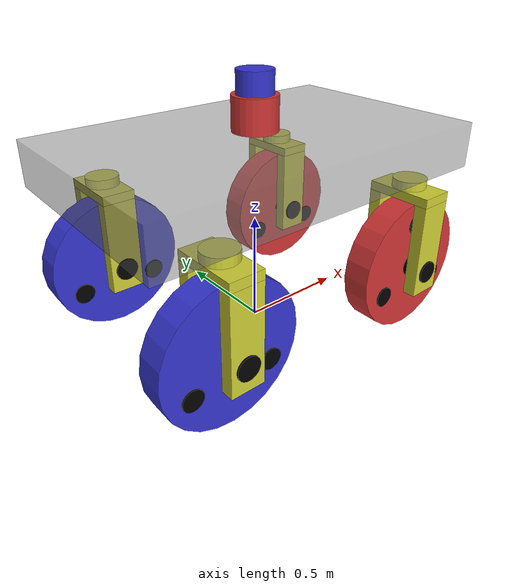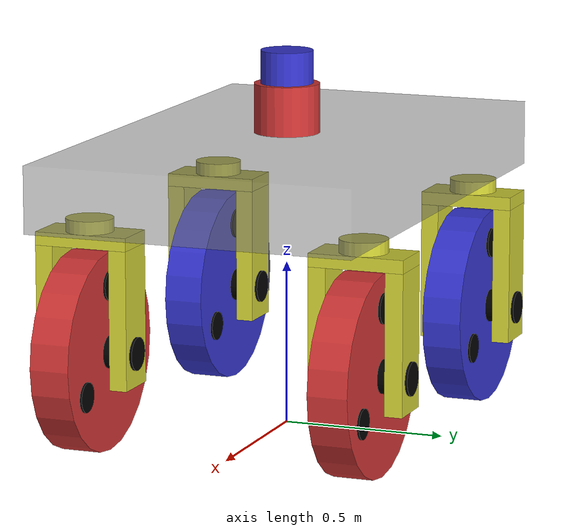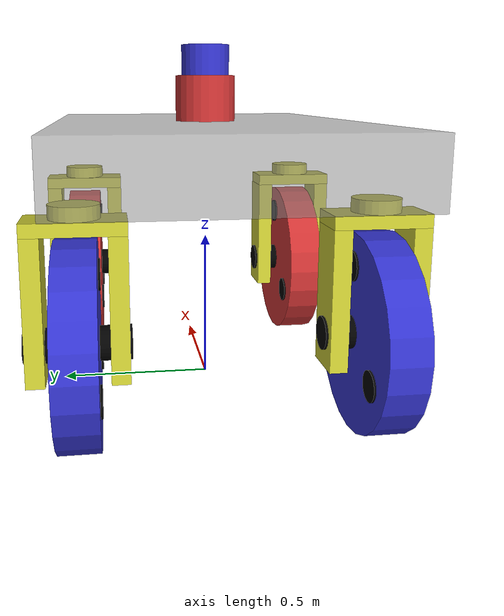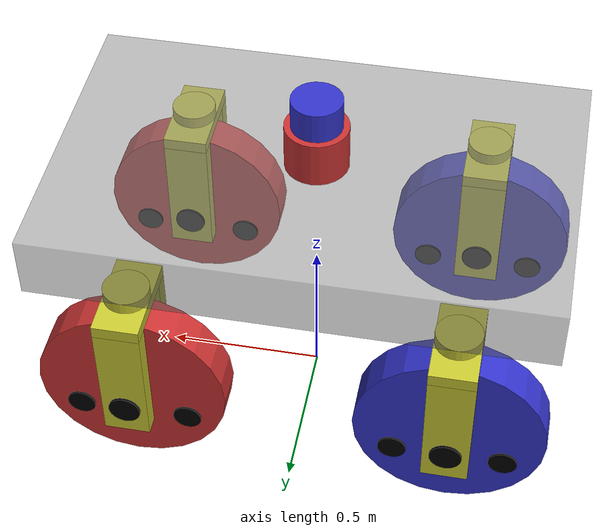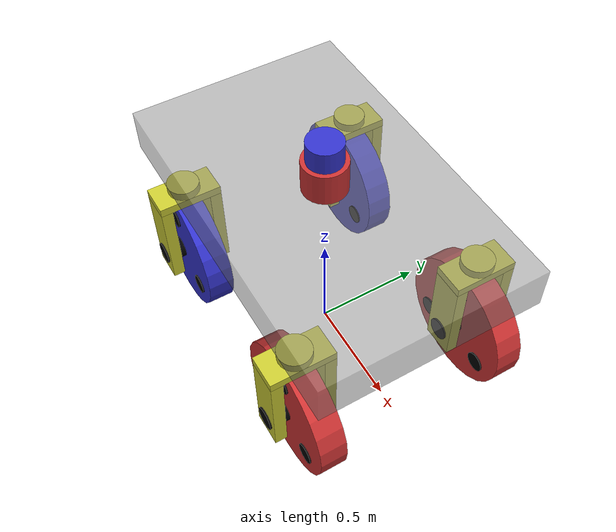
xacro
<?xml version="1.0"?>
<robot name="car_like_mobile_robot" xmlns:xacro="http://ros.org/wiki/xacro">
    <!-- 色を定義 -->
    <material name="gray">
        <color rgba="0.5 0.5 0.5 0.5"/>
    </material>
    <material name="red">
        <color rgba="0.8 0.2 0.2 1.0"/>
    </material>
    <material name="green">
        <color rgba="0.2 0.8 0.2 1.0"/>
    </material>
    <material name="blue">
        <color rgba="0.2 0.2 0.8 1.0"/>
    </material>
    <material name="yellow">
        <color rgba="0.8 0.8 0.2 1.0"/>
    </material>
    <material name="black">
        <color rgba="0.0 0.0 0.0 1.0"/>
    </material>

    <!-- 円周率 -->
    <xacro:property name="PI" value="3.1415926535897932384626433832795028841971" />

    <!-- 車両のパラメータ -->
    <xacro:property name="Lv" value="1.0" /> <!-- 車軸間距離 -->
    <xacro:property name="vehicle_body_length" value="${Lv * 1.6}" />
    <xacro:property name="vehicle_body_width" value="${Lv}" />
    <xacro:property name="vehicle_body_height" value="${Lv * 0.2}" />
    <xacro:property name="center_of_vehicle_body_z" value="${Lv * 0.8}" />
    <xacro:property name="wheel_base_half_length" value="${Lv * 0.5}" /> <!-- 車軸間半長 -->
    <!-- 車輪のパラメータ -->
    <xacro:property name="wheel_radius" value="${Lv * 0.3}" />  <!-- 車輪半径 -->
    <xacro:property name="wheel_width" value="${wheel_radius * 0.4}" />  <!-- 車輪幅 -->
    <!-- 車輪の回転がわかるようにするための棒のパラメータと、n番目の棒の車輪中心からの相対位置(x,y) -->
    <xacro:property name="wheel_visual_cylinder_radius" value="${wheel_radius * 0.15}" />
    <xacro:property name="wheel_visual_cylinder_length" value="${wheel_width * 1.1}" />
    <xacro:property name="wheel_1st_visual_cylinder_x" value="${(wheel_radius * 2.0 / 3.0) * cos(PI / 6.0)}" />
    <xacro:property name="wheel_1st_visual_cylinder_y" value="${(wheel_radius * 2.0 / 3.0) * sin(PI / 6.0)}" />
    <xacro:property name="wheel_2nd_visual_cylinder_x" value="${(wheel_radius * 2.0 / 3.0) * cos(5.0 * PI / 6.0)}" />
    <xacro:property name="wheel_2nd_visual_cylinder_y" value="${(wheel_radius * 2.0 / 3.0) * sin(5.0 * PI / 6.0)}" />
    <xacro:property name="wheel_3rd_visual_cylinder_x" value="${(wheel_radius * 2.0 / 3.0) * cos(9.0 * PI / 6.0)}" />
    <xacro:property name="wheel_3rd_visual_cylinder_y" value="${(wheel_radius * 2.0 / 3.0) * sin(9.0 * PI / 6.0)}" />
    <!-- steeringのパラメータ -->
    <xacro:property name="steering_radius" value="${wheel_width * 0.6}" />
    <xacro:property name="steering_height" value="${Lv * 0.04}" />
    <xacro:property name="left_steering_y" value="${0.5*vehicle_body_width - steering_radius}" />
    <xacro:property name="right_steering_y" value="${-0.5*vehicle_body_width + steering_radius}" />
    <!-- steeringの下についている板とその仲間たちのパラメータ -->
    <xacro:property name="plate_under_the_steering_length" value="${steering_radius*2.0}" />
    <xacro:property name="plate_under_the_steering_width" value="${steering_radius*4.0}" />
    <xacro:property name="plate_under_the_steering_height" value="${Lv * 0.04}" />
    <xacro:property name="side_plate_of_wheel_length" value="${plate_under_the_steering_length}" />
    <xacro:property name="side_plate_of_wheel_width" value="${0.25*(plate_under_the_steering_width-steering_radius)}" />
    <xacro:property name="side_plate_of_wheel_height" value="${center_of_vehicle_body_z-(0.5*vehicle_body_height+steering_height+plate_under_the_steering_height) - (wheel_radius-axel_radius*2.0)}" />
    <xacro:property name="axel_length" value="${plate_under_the_steering_width*1.05}" /> <!-- 車軸長 -->
    <xacro:property name="axel_radius" value="0.05" /> <!-- 車軸半径 -->
    <!-- LiDARセンサのパラメータ -->
    <xacro:property name="lidar_radius" value="0.1" />
    <xacro:property name="lidar_height" value="0.15" />
    <xacro:property name="lidar_z" value="${center_of_vehicle_body_z + (0.5 * (vehicle_body_height + lidar_height))}" />
    <!-- IMUセンサのパラメータ -->
    <xacro:property name="imu_radius" value="0.08" />
    <xacro:property name="imu_height" value="0.1" />
    <!-- 車体の中に埋め込む -->
    <!-- LiDARセンサの上に乗せる -->
    <xacro:property name="imu_z" value="${lidar_z + 0.5 * (lidar_height + imu_height)}" />
    <!-- 後輪間中点の上に乗せる -->
    <!-- bodyの下に搭載する -->

    <!-- リンクの質量設定 -->
    <xacro:property name="body_mass" value="50.0" />
    <xacro:property name="steering_mass" value="2.0" />
    <xacro:property name="plate_under_the_steering_mass" value="2.0" />
    <xacro:property name="side_plate_of_wheel_mass" value="8.0" />
    <!-- 半径:0.05[m], 幅:0.288[m], 鋼の密度:7850[kg/m^3] -->
    <xacro:property name="axel_mass" value="17.75" />
    <!-- 外径:0.3[m], 幅:0.12[m], 内径:0.21[m], ゴムの密度:1500[kg/m^3] -->
    <xacro:property name="wheel_mass" value="5.19" />
    <xacro:property name="wheel_visual_cylinder_mass" value="0.0" />

    <!-- リンクのイナーシャの設定 -->
    <xacro:property name="I_body_xx" value="${body_mass*(vehicle_body_height*vehicle_body_height + vehicle_body_length*vehicle_body_length) / 12}" />
    <xacro:property name="I_body_yy" value="${body_mass*(vehicle_body_width*vehicle_body_width + vehicle_body_height*vehicle_body_height) / 12}" />
    <xacro:property name="I_body_zz" value="${body_mass*(vehicle_body_width*vehicle_body_width + vehicle_body_length*vehicle_body_length) / 12}" />
    <xacro:property name="I_steering_xx" value="${steering_mass*(3*axel_radius*axel_radius + steering_height*steering_height) / 12}" />
    <xacro:property name="I_steering_yy" value="${steering_mass*(3*axel_radius*axel_radius + steering_height*steering_height) / 12}" />
    <xacro:property name="I_steering_zz" value="${steering_mass*axel_radius*axel_radius / 2}" />
    <xacro:property name="I_plate_under_the_steering_xx" value="${plate_under_the_steering_mass*(plate_under_the_steering_height*plate_under_the_steering_height + plate_under_the_steering_length*plate_under_the_steering_length) / 12}" />
    <xacro:property name="I_plate_under_the_steering_yy" value="${plate_under_the_steering_mass*(plate_under_the_steering_width*plate_under_the_steering_width + plate_under_the_steering_height*plate_under_the_steering_height) / 12}" />
    <xacro:property name="I_plate_under_the_steering_zz" value="${plate_under_the_steering_mass*(plate_under_the_steering_width*plate_under_the_steering_width + plate_under_the_steering_length*plate_under_the_steering_length) / 12}" />
    <xacro:property name="I_side_plate_of_wheel_xx" value="${side_plate_of_wheel_mass*(side_plate_of_wheel_height*side_plate_of_wheel_height + side_plate_of_wheel_length*side_plate_of_wheel_length) / 12}" />
    <xacro:property name="I_side_plate_of_wheel_yy" value="${side_plate_of_wheel_mass*(side_plate_of_wheel_width*side_plate_of_wheel_width + side_plate_of_wheel_height*side_plate_of_wheel_height) / 12}" />
    <xacro:property name="I_side_plate_of_wheel_zz" value="${side_plate_of_wheel_mass*(side_plate_of_wheel_width*side_plate_of_wheel_width + side_plate_of_wheel_length*side_plate_of_wheel_length) / 12}" />
    <xacro:property name="I_axel_xx" value="${axel_mass*(3*axel_radius*axel_radius + axel_length*axel_length) / 12}" />
    <xacro:property name="I_axel_yy" value="${axel_mass*(3*axel_radius*axel_radius + axel_length*axel_length) / 12}" />
    <xacro:property name="I_axel_zz" value="${axel_mass*axel_radius*axel_radius / 2}" />
    <xacro:property name="I_wheel_xx" value="${wheel_mass*(3*wheel_radius*wheel_radius + wheel_width*wheel_width) / 12}" />
    <xacro:property name="I_wheel_yy" value="${wheel_mass*(3*wheel_radius*wheel_radius + wheel_width*wheel_width) / 12}" />
    <xacro:property name="I_wheel_zz" value="${wheel_mass*wheel_radius*wheel_radius / 2}" />
    <xacro:property name="I_wheel_visual_cylinder_xx" value="${wheel_visual_cylinder_mass*(3*wheel_visual_cylinder_radius*wheel_visual_cylinder_radius + wheel_visual_cylinder_length*wheel_visual_cylinder_length) / 12}" />
    <xacro:property name="I_wheel_visual_cylinder_yy" value="${wheel_visual_cylinder_mass*(3*wheel_visual_cylinder_radius*wheel_visual_cylinder_radius + wheel_visual_cylinder_length*wheel_visual_cylinder_length) / 12}" />
    <xacro:property name="I_wheel_visual_cylinder_zz" value="${wheel_visual_cylinder_mass*wheel_visual_cylinder_radius*wheel_visual_cylinder_radius / 2}" />

    <!-- 摩擦力 -->
    <xacro:property name="mu_1" value="0.8" />
    <xacro:property name="mu_2" value="0.8" />
    <xacro:property name="kp" value="2000000" />
    <xacro:property name="kd" value="100" />

    <!-- 車輪の回転がわかるように埋め込む黒棒のマクロ -->
    <xacro:macro name="wheel_visual_cylinder_macro" params="vehicle front_or_rear left_or_right nth_cylinder">
        <joint name="${vehicle}_${front_or_rear}_${left_or_right}_${nth_cylinder}_joint" type="fixed">
            <xacro:if value="${nth_cylinder=='first'}">
                <origin xyz="${wheel_1st_visual_cylinder_x} ${wheel_1st_visual_cylinder_y} 0" rpy="0 0 0"/>
            </xacro:if>
            <xacro:if value="${nth_cylinder=='second'}">
                <origin xyz="${wheel_2nd_visual_cylinder_x} ${wheel_2nd_visual_cylinder_y} 0" rpy="0 0 0"/>
            </xacro:if>
            <xacro:if value="${nth_cylinder=='third'}">
                <origin xyz="${wheel_3rd_visual_cylinder_x} ${wheel_3rd_visual_cylinder_y} 0" rpy="0 0 0"/>
            </xacro:if>
            <parent link="${vehicle}_${front_or_rear}_${left_or_right}_link"/>
            <child  link="${vehicle}_${front_or_rear}_${left_or_right}_${nth_cylinder}_link"/>
        </joint>
        <link name="${vehicle}_${front_or_rear}_${left_or_right}_${nth_cylinder}_link">
            <inertial>
                <origin xyz="0 0 0" rpy="0 0 0"/>
                <mass value="${wheel_visual_cylinder_mass}"/>
                <inertia ixx="${I_wheel_visual_cylinder_xx}" ixy="0.0" ixz="0.0" iyy="${I_wheel_visual_cylinder_yy}" iyz="0.0" izz="${I_wheel_visual_cylinder_zz}"/>
            </inertial>
            <visual>
                <geometry>
                    <cylinder radius="${wheel_visual_cylinder_radius}" length="${wheel_visual_cylinder_length}" />
                </geometry>
                <material name="black"/>
            </visual>
            <collision>
                <geometry>
                    <cylinder radius="${wheel_visual_cylinder_radius}" length="${wheel_visual_cylinder_length}" />
                </geometry>
            </collision>
        </link>
        <gazebo reference="${vehicle}_${front_or_rear}_${left_or_right}_${nth_cylinder}_link">
            <material>Gazebo/Black</material>
        </gazebo>
    </xacro:macro>

    <!-- wheel macro -->
    <xacro:macro name="wheel_macro" params="parent vehicle front_or_rear left_or_right color gazebo_color">
        <joint name="${vehicle}_${front_or_rear}_${left_or_right}_joint" type="continuous">
            <origin xyz="0 0 ${-(center_of_vehicle_body_z - 0.5*(vehicle_body_height +steering_height) - wheel_radius)}" rpy="${radians(-90)} 0 0"/>
            <parent link="${parent}"/>
            <child  link="${vehicle}_${front_or_rear}_${left_or_right}_link"/>
            <axis xyz="0 0 1" />
            <limit velocity="10.0" effort="51.0" />
        </joint>
        <link name="${vehicle}_${front_or_rear}_${left_or_right}_link">
            <inertial>
                <origin xyz="0 0 0" rpy="0 0 0"/>
                <mass value="${wheel_mass}"/>
                <inertia ixx="${I_wheel_xx}" ixy="0.0" ixz="0.0" iyy="${I_wheel_yy}" iyz="0.0" izz="${I_wheel_zz}"/>
            </inertial>
            <visual>
                <geometry>
                    <cylinder radius="${wheel_radius}" length="${wheel_width}" />
                </geometry>
                <material name="${color}"/>
            </visual>
            <collision>
                <geometry>
                    <cylinder radius="${wheel_radius}" length="${wheel_width}" />
                </geometry>
            </collision>
        </link>
        <!-- 回転がわかるように3つの黒棒を埋め込む -->
        <xacro:wheel_visual_cylinder_macro vehicle="${vehicle}" front_or_rear="${front_or_rear}" left_or_right ="${left_or_right}" nth_cylinder="first"/>
        <xacro:wheel_visual_cylinder_macro vehicle="${vehicle}" front_or_rear="${front_or_rear}" left_or_right ="${left_or_right}" nth_cylinder="second"/>
        <xacro:wheel_visual_cylinder_macro vehicle="${vehicle}" front_or_rear="${front_or_rear}" left_or_right ="${left_or_right}" nth_cylinder="third"/>

        <gazebo reference="${vehicle}_${front_or_rear}_${left_or_right}_link">
            <material>Gazebo/${gazebo_color}</material>
            <mu1 value="${mu_1}" />
            <mu2 value="${mu_2}" />
            <kp value="${kp}" />
            <kd value="${kd}" />
        </gazebo>
    </xacro:macro>

    <!-- side_plate_of_wheel_macro -->
    <xacro:macro name="side_plate_of_wheel_macro" params="parent front_or_rear left_or_right left_plate_or_right_plate">
        <joint name="vehicle1_${left_plate_or_right_plate}_plate_of_${front_or_rear}_${left_or_right}_wheel_joint" type="fixed">
            <xacro:if value="${left_plate_or_right_plate=='left'}">
                <origin xyz="0 ${0.5*(plate_under_the_steering_width - side_plate_of_wheel_width)} ${-0.5 *(plate_under_the_steering_height + side_plate_of_wheel_height)}" rpy="0 0 0"/>
            </xacro:if>
            <xacro:if value="${left_plate_or_right_plate=='right'}">
                <origin xyz="0 ${-0.5*(plate_under_the_steering_width - side_plate_of_wheel_width)} ${-0.5 *(plate_under_the_steering_height + side_plate_of_wheel_height)}" rpy="0 0 0"/>
            </xacro:if>
            <parent link="${parent}"/>
            <child  link="vehicle1_${left_plate_or_right_plate}_plate_of_${front_or_rear}_${left_or_right}_wheel_link"/>
        </joint>
        <link name="vehicle1_${left_plate_or_right_plate}_plate_of_${front_or_rear}_${left_or_right}_wheel_link">
            <inertial>
                <origin xyz="0 0 0" rpy="0 0 0"/>
                <mass value="${side_plate_of_wheel_mass}"/>
                <inertia ixx="${I_side_plate_of_wheel_xx}" ixy="0.0" ixz="0.0" iyy="${I_side_plate_of_wheel_yy}" iyz="0.0" izz="${I_side_plate_of_wheel_zz}"/>
            </inertial>
            <visual>
            <origin xyz="0 0 0" rpy="0 0 0" />
                <geometry>
                    <box size="${side_plate_of_wheel_length} ${side_plate_of_wheel_width} ${side_plate_of_wheel_height}" />
                </geometry>
                <material name="yellow" />
            </visual>
            <collision>
            <origin xyz="0 0 0" rpy="0 0 0" />
                <geometry>
                    <box size="${side_plate_of_wheel_length} ${side_plate_of_wheel_width} ${side_plate_of_wheel_height}" />
                </geometry>
            </collision>
        </link>
        <gazebo reference="vehicle1_${left_plate_or_right_plate}_plate_of_${front_or_rear}_${left_or_right}_wheel_link">
            <material>Gazebo/Yellow</material>
        </gazebo>
    </xacro:macro>

    <!-- ${front_or_rear}_${left_or_right}_steering_and_wheel_macro -->
    <xacro:macro name="steering_and_wheel_macro" params="parent xyz front_or_rear left_or_right">
        <!-- steering -->
        <xacro:if value="${front_or_rear=='front'}">
            <xacro:property name="wheel_joint_type" value="revolute" />
        </xacro:if>
        <xacro:if value="${front_or_rear=='rear'}">
            <xacro:property name="wheel_joint_type" value="fixed" />
        </xacro:if>
        <joint name="vehicle1_${front_or_rear}_${left_or_right}_steering_joint" type="${wheel_joint_type}">
            <origin xyz="${xyz}" rpy="0 0 0"/>
            <parent link="${parent}"/>
            <child  link="vehicle1_${front_or_rear}_${left_or_right}_steering_link"/>
            <xacro:if value="${front_or_rear=='front'}">
                <axis xyz="0 0 1" />
                <limit lower="-1.57" upper="1.57" effort="1000.0" velocity="10.0"/>
            </xacro:if>
        </joint>
        <link name="vehicle1_${front_or_rear}_${left_or_right}_steering_link">
            <inertial>
                <origin xyz="0 0 0" rpy="0 0 0"/>
                <mass value="${steering_mass}"/>
                <inertia ixx="${I_steering_xx}" ixy="0.0" ixz="0.0" iyy="${I_steering_yy}" iyz="0.0" izz="${I_steering_zz}"/>
            </inertial>
            <visual>
            <origin xyz="0 0 0" rpy="0 0 0" />
                <geometry>
                    <cylinder radius="${steering_radius}" length="${steering_height}" />
                </geometry>
                <material name="yellow" />
            </visual>
            <collision>
            <origin xyz="0 0 0" rpy="0 0 0" />
                <geometry>
                    <cylinder radius="${steering_radius}" length="${steering_height}" />
                </geometry>
            </collision>
        </link>
        <gazebo reference="vehicle1_${front_or_rear}_${left_or_right}_steering_link">
            <material>Gazebo/Yellow</material>
        </gazebo>

        <!-- wheel -->
        <xacro:if value="${front_or_rear=='front'}">
            <xacro:wheel_macro vehicle="vehicle1" front_or_rear="${front_or_rear}" left_or_right ="${left_or_right}" parent="vehicle1_${front_or_rear}_${left_or_right}_steering_link" color="red" gazebo_color="Red"/>
        </xacro:if>
        <xacro:if value="${front_or_rear=='rear'}">
            <xacro:wheel_macro vehicle="vehicle1" front_or_rear="${front_or_rear}" left_or_right ="${left_or_right}" parent="vehicle1_${front_or_rear}_${left_or_right}_steering_link" color="blue" gazebo_color="Blue"/>
        </xacro:if>

        <!-- plate under the steering -->
        <joint name="vehicle1_plate_under_the_${front_or_rear}_${left_or_right}_steering_joint" type="fixed">
            <origin xyz="0 0 ${-0.5 *(steering_height + plate_under_the_steering_height)}" rpy="0 0 0"/>
            <parent link="vehicle1_${front_or_rear}_${left_or_right}_steering_link"/>
            <child  link="vehicle1_plate_under_the_${front_or_rear}_${left_or_right}_steering_link"/>
        </joint>
        <link name="vehicle1_plate_under_the_${front_or_rear}_${left_or_right}_steering_link">
            <inertial>
                <origin xyz="0 0 0" rpy="0 0 0"/>
                <mass value="${plate_under_the_steering_mass}"/>
                <inertia ixx="${I_plate_under_the_steering_xx}" ixy="0.0" ixz="0.0" iyy="${I_plate_under_the_steering_yy}" iyz="0.0" izz="${I_plate_under_the_steering_zz}"/>
            </inertial>
            <visual>
            <origin xyz="0 0 0" rpy="0 0 0" />
                <geometry>
                    <box size="${plate_under_the_steering_length} ${plate_under_the_steering_width} ${plate_under_the_steering_height}" />
                </geometry>
                <material name="yellow" />
            </visual>
            <collision>
            <origin xyz="0 0 0" rpy="0 0 0" />
                <geometry>
                    <box size="${plate_under_the_steering_length} ${plate_under_the_steering_width} ${plate_under_the_steering_height}" />
                </geometry>
            </collision>
        </link>
        <gazebo reference="vehicle1_plate_under_the_${front_or_rear}_${left_or_right}_steering_link">
            <material>Gazebo/Yellow</material>
        </gazebo>

        <!-- side plate of wheel -->
        <xacro:side_plate_of_wheel_macro parent="vehicle1_plate_under_the_${front_or_rear}_${left_or_right}_steering_link" front_or_rear="${front_or_rear}" left_or_right="${left_or_right}" left_plate_or_right_plate="left"/>
        <xacro:side_plate_of_wheel_macro parent="vehicle1_plate_under_the_${front_or_rear}_${left_or_right}_steering_link" front_or_rear="${front_or_rear}" left_or_right="${left_or_right}" left_plate_or_right_plate="right"/>

        <!-- axel of wheel -->
        <joint name="vehicle1_${front_or_rear}_${left_or_right}_wheel_axle_joint" type="fixed">
            <origin xyz="0 0 ${-((center_of_vehicle_body_z - 0.5*vehicle_body_height -steering_height -0.5*plate_under_the_steering_height) - wheel_radius)}" rpy="${radians(-90)} 0 0"/>
            <parent link="vehicle1_plate_under_the_${front_or_rear}_${left_or_right}_steering_link"/>
            <child  link="vehicle1_${front_or_rear}_${left_or_right}_wheel_axle_link"/>
        </joint>
        <link name="vehicle1_${front_or_rear}_${left_or_right}_wheel_axle_link">
            <inertial>
                <origin xyz="0 0 0" rpy="0 0 0"/>
                <mass value="${axel_mass}"/>
                <inertia ixx="${I_axel_xx}" ixy="0.0" ixz="0.0" iyy="${I_axel_yy}" iyz="0.0" izz="${I_axel_zz}"/>
            </inertial>
            <visual>
            <origin xyz="0 0 0" rpy="0 0 0" />
                <geometry>
                    <cylinder radius="${axel_radius}" length="${axel_length}" />
                </geometry>
                <material name="black" />
            </visual>
            <collision>
            <origin xyz="0 0 0" rpy="0 0 0" />
                <geometry>
                    <cylinder radius="${axel_radius}" length="${axel_length}" />
                </geometry>
            </collision>
        </link>
        <gazebo reference="vehicle1_${front_or_rear}_${left_or_right}_wheel_axle_link">
            <material>Gazebo/Black</material>
        </gazebo>

    </xacro:macro>

    <!-- LiDARセンサのマクロ -->
    <xacro:macro name="laser_macro" params="parent prefix xyz">
        <joint name="${prefix}_joint" type="fixed">
            <parent link="${parent}"/>
            <child  link="${prefix}_link"/>
            <origin xyz="${xyz}" rpy="0 0 0"/>
        </joint>
        <link name="${prefix}_link">
            <inertial>
                <mass value="1e-5" />
                <origin xyz="0 0 0" rpy="0 0 0" />
                <inertia ixx="1e-6" ixy="0" ixz="0" iyy="1e-6" iyz="0" izz="1e-6" />
            </inertial>
            <visual>
                <origin xyz="0 0 0" rpy="0 0 0" />
                <geometry>
                    <cylinder radius="${lidar_radius}" length="${lidar_height}" />
                </geometry>
                <material name="red" />
            </visual>
            <collision>
                <origin xyz="0 0 0" rpy="0 0 0"/>
                <geometry>
                    <cylinder radius="${lidar_radius}" length="${lidar_height}" />
                </geometry>
            </collision>
        </link>
        <gazebo reference="${prefix}_link">
            <material>Gazebo/Red</material>
            <sensor type="gpu_ray" name="${prefix}">
                <pose>0 0 0 0 0 0</pose>
                <visualize>true</visualize>
                <update_rate>30</update_rate>
                <ray>
                    <scan>
                        <horizontal>
                            <samples>720</samples>
                            <resolution>1</resolution>
                            <min_angle>${-PI / 2}</min_angle>
                            <max_angle>${PI / 2}</max_angle>
                        </horizontal>
                    </scan>
                    <range>
                        <min>0.10</min>
                        <max>30.0</max>
                        <resolution>0.01</resolution>
                    </range>
                    <noise>
                        <type>gaussian</type>
                        <mean>0.0</mean>
                        <stddev>0.001</stddev>
                    </noise>
                </ray>
                <plugin name="gazebo_ros_lidar_controller" filename="libgazebo_ros_gpu_laser.so">
                    <topicName>/${prefix}_link/scan</topicName>
                    <frameName>${prefix}_link</frameName>
                </plugin>
            </sensor>
        </gazebo>
    </xacro:macro>

    <!-- IMUセンサを取り付けるマクロ -->
    <xacro:macro name="imu_macro" params="parent prefix xyz">
        <!-- IMUセンサを取り付けるジョイント -->
        <joint name="${prefix}_joint" type="fixed">
            <parent link="${parent}"/>
            <child link="${prefix}_link"/>
            <origin xyz="${xyz}" rpy="0 0 0"/>
        </joint>
        <!-- IMUセンサのリンク -->
        <link name="${prefix}_link">
            <visual>
                <geometry>
                    <cylinder radius="${imu_radius}" length="${imu_height}" />
                </geometry>
                <material name="blue"/>
            </visual>
            <collision>
                <geometry>
                    <cylinder radius="${imu_radius}" length="${imu_height}" />
                </geometry>
            </collision>
            <inertial>
                <mass value="0.01"/>
                <inertia ixx="0.0001" ixy="0.0" ixz="0.0" iyy="0.0001" iyz="0.0" izz="0.0001"/>
            </inertial>
        </link>
        <!-- Gazeboプラグインの追加 -->
        <gazebo reference="${prefix}_link">
            <gravity>true</gravity>
            <material>Gazebo/Blue</material>
            <sensor name="imu_sensor" type="imu">
                <always_on>true</always_on>
                <update_rate>1000</update_rate>
                <visualize>true</visualize>
                <topic>__default_topic__</topic>
                <plugin name="imu_plugin" filename="libgazebo_ros_imu_sensor.so">
                    <topicName>/${prefix}_link/imu</topicName>
                    <bodyName>${prefix}_link</bodyName>
                    <updateRateHZ>10.0</updateRateHZ>
                    <gaussianNoise>0.01</gaussianNoise>
                    <xyzOffset>0 0 0</xyzOffset>
                    <rpyOffset>0 0 0</rpyOffset>
                    <frameName>${prefix}_link</frameName>
                </plugin>
                <pose>0 0 0 0 0 0</pose>
            </sensor>
        </gazebo>
    </xacro:macro>

    <!-- 本体 -->
    <link name="base_link"/>

    <!-- 胴体 -->
    <joint name="vehicle1_body_joint" type="fixed">
        <parent link="base_link"/>
        <child  link="vehicle1_body_link"/>
        <!-- 車体中心を基準位置 -->
        <origin xyz="0 0 ${center_of_vehicle_body_z}" rpy="0 0 0"/>
        <!-- 後輪中点を基準位置 -->
    </joint>
    <link name="vehicle1_body_link">
        <inertial>
            <origin xyz="0 0 0" rpy="0 0 0"/>
            <mass value="${body_mass}"/>
            <inertia ixx="${I_body_xx}" ixy="0.0" ixz="0.0" iyy="${I_body_yy}" iyz="0.0" izz="${I_body_zz}"/>
        </inertial>
        <visual>
            <origin xyz="0 0 0" rpy="0 0 0" />
            <geometry>
                <box size="${vehicle_body_length} ${vehicle_body_width} ${vehicle_body_height}" />
            </geometry>
            <material name="gray" />
        </visual>
        <collision>
            <origin xyz="0 0 0" rpy="0 0 0" />
            <geometry>
                <box size="${vehicle_body_length} ${vehicle_body_width} ${vehicle_body_height}" />
            </geometry>
        </collision>
    </link>
    <gazebo reference="vehicle1_body_link">
        <material>Gazebo/Gray</material>
    </gazebo>

    <!-- LiDAR sensor -->
    <xacro:laser_macro prefix="lidar" parent="vehicle1_body_link" xyz="0 0 ${lidar_z - center_of_vehicle_body_z}"/>

    <!-- IMU sensor -->
    <xacro:imu_macro prefix="imu" parent="vehicle1_body_link" xyz="0 0 ${imu_z - center_of_vehicle_body_z}"/>

    <!-- steering and wheel -->
    <xacro:steering_and_wheel_macro parent="vehicle1_body_link" xyz="${wheel_base_half_length} ${left_steering_y} ${-0.5 *(vehicle_body_height + steering_height)}" front_or_rear="front" left_or_right="left"/>
    <xacro:steering_and_wheel_macro parent="vehicle1_body_link" xyz="${wheel_base_half_length} ${right_steering_y} ${-0.5 *(vehicle_body_height + steering_height)}" front_or_rear="front" left_or_right="right"/>
    <xacro:steering_and_wheel_macro parent="vehicle1_body_link" xyz="${-wheel_base_half_length} ${left_steering_y} ${-0.5 *(vehicle_body_height + steering_height)}" front_or_rear="rear" left_or_right="left"/>
    <xacro:steering_and_wheel_macro parent="vehicle1_body_link" xyz="${-wheel_base_half_length} ${right_steering_y} ${-0.5 *(vehicle_body_height + steering_height)}" front_or_rear="rear" left_or_right="right"/>

    <!-- Transmission -->
    <!-- front left wheel(受動車輪のためEffort入力Effort出力) -->
    <transmission name="vehicle1_front_left_trans" type="SimpleTransmission">
        <type>transmission_interface/SimpleTransmission</type>
        <joint name="vehicle1_front_left_joint">
            <hardwareInterface>hardware_interface/EffortJointInterface</hardwareInterface>
        </joint>
        <actuator name="vehicle1_front_left_motor">
            <mechanicalReduction>1</mechanicalReduction>
        </actuator>
    </transmission>
    <!-- front left steering(Position入力Effort出力) -->
    <transmission name="vehicle1_front_left_steering_trans" type="SimpleTransmission">
        <type>transmission_interface/SimpleTransmission</type>
        <joint name="vehicle1_front_left_steering_joint">
            <hardwareInterface>hardware_interface/EffortJointInterface</hardwareInterface>
        </joint>
        <actuator name="vehicle1_front_left_steering_motor">
            <mechanicalReduction>1</mechanicalReduction>
        </actuator>
    </transmission>
    <!-- front right wheel(受動車輪のためEffort入力Effort出力) -->
    <transmission name="vehicle1_front_right_trans" type="SimpleTransmission">
        <type>transmission_interface/SimpleTransmission</type>
        <joint name="vehicle1_front_right_joint">
            <hardwareInterface>hardware_interface/EffortJointInterface</hardwareInterface>
        </joint>
        <actuator name="vehicle1_front_right_motor">
            <mechanicalReduction>1</mechanicalReduction>
        </actuator>
    </transmission>
    <!-- front right steering(Position入力Effort出力) -->
    <transmission name="vehicle1_front_right_steering_trans" type="SimpleTransmission">
        <type>transmission_interface/SimpleTransmission</type>
        <joint name="vehicle1_front_right_steering_joint">
            <hardwareInterface>hardware_interface/EffortJointInterface</hardwareInterface>
        </joint>
        <actuator name="vehicle1_front_right_steering_motor">
            <mechanicalReduction>1</mechanicalReduction>
        </actuator>
    </transmission>
    <!-- rear left wheel(差動二輪のためVelocity入力Effort出力) -->
    <transmission name="vehicle1_rear_left_trans" type="SimpleTransmission">
        <type>transmission_interface/SimpleTransmission</type>
        <joint name="vehicle1_rear_left_joint">
            <hardwareInterface>hardware_interface/EffortJointInterface</hardwareInterface>
        </joint>
        <actuator name="vehicle1_rear_left_motor">
            <mechanicalReduction>1</mechanicalReduction>
        </actuator>
    </transmission>
    <!-- rear right wheel(差動二輪のためVelocity入力Effort出力) -->
    <transmission name="vehicle1_rear_right_trans" type="SimpleTransmission">
        <type>transmission_interface/SimpleTransmission</type>
        <joint name="vehicle1_rear_right_joint">
            <hardwareInterface>hardware_interface/EffortJointInterface</hardwareInterface>
        </joint>
        <actuator name="vehicle1_rear_right_motor">
            <mechanicalReduction>1</mechanicalReduction>
        </actuator>
    </transmission>

    <!-- Gazeboプラグインの設定 -->
    <gazebo>
        <plugin name="gazebo_ros_control" filename="libgazebo_ros_control.so">
            <robotNamespace>/car_like_mobile_robot</robotNamespace>
            <robotSimType>gazebo_ros_control/DefaultRobotHWSim</robotSimType>
            <legacyModeNS>true</legacyModeNS>
        </plugin>

        <plugin name="ground_truth" filename="libgazebo_ros_p3d.so">
            <frameName>world</frameName>
            <bodyName>base_link</bodyName>
            <topicName>/true_position</topicName>
            <updateRate>20</updateRate>
        </plugin>

    </gazebo>
</robot>
